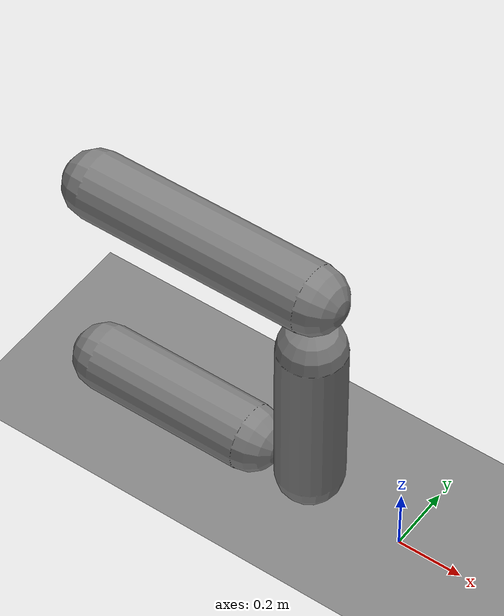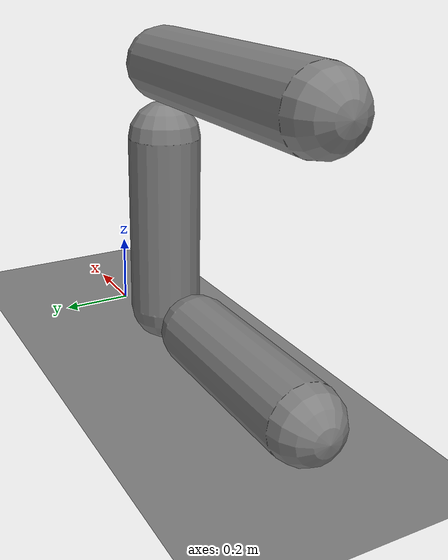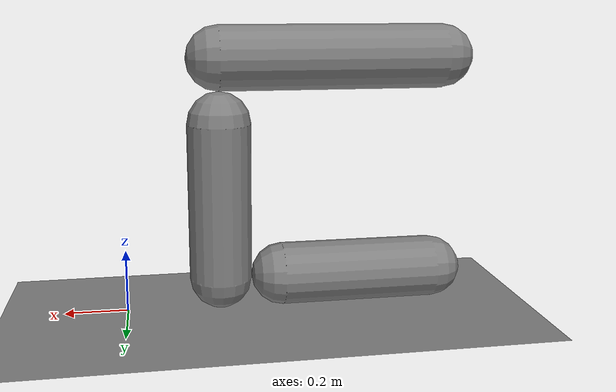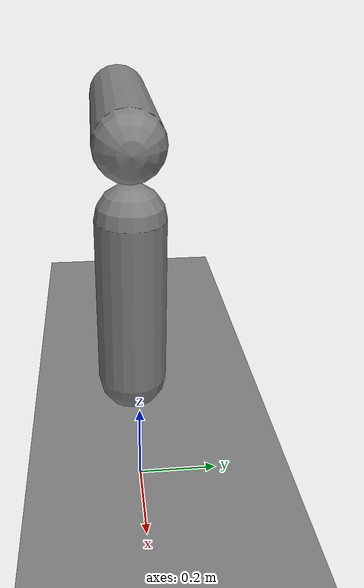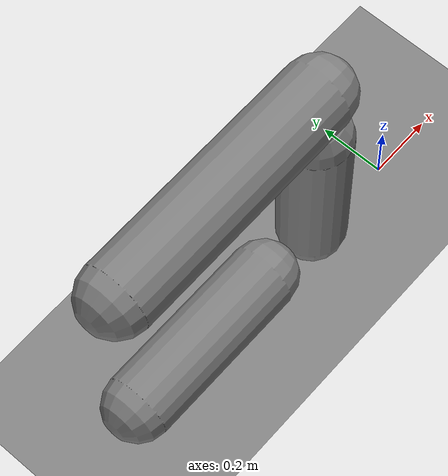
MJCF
<mujoco model="contact subtree">
  <worldbody>
    <light pos="0 0 5"/>
    <geom name="floor" type="plane" size="2 2 .01"/>
    <body name="thigh" pos="-1 0 .1">
      <joint type="slide"/>
      <geom type="capsule" size=".1" fromto="0 0 0 .5 0 0"/>
      <body name="shin" pos=".7 0 0">
        <joint axis="0 1 0"/>
        <geom type="capsule" size=".1" fromto="0 0 0 0 0 .5"/>
        <body name="foot" pos="0 0 .7">
          <joint axis="0 1 0"/>
          <geom type="capsule" size=".1" fromto="0 0 0 -.7 0 0"/>
        </body>
      </body>
    </body>
  </worldbody>

  <sensor>
    <contact name="all"/>
    <contact name="world" subtree1="world"/>
    <contact name="thigh" subtree1="thigh"/>
    <contact name="shin" subtree1="shin"/>
    <contact name="foot" subtree1="foot"/>
    <contact name="foot_w" subtree1="foot" body2="world"/>
    <contact name="foot_w2" subtree1="foot" subtree2="world"/>
  </sensor>
</mujoco>
